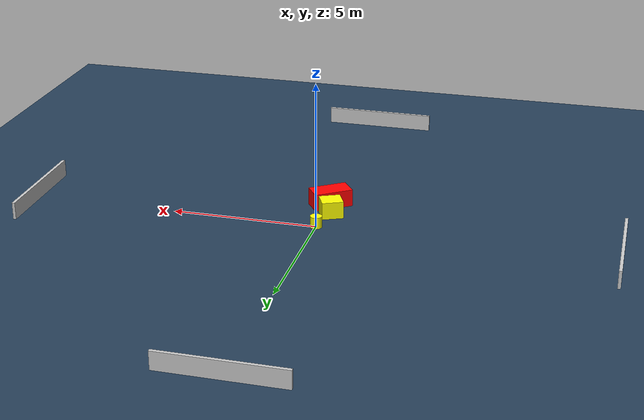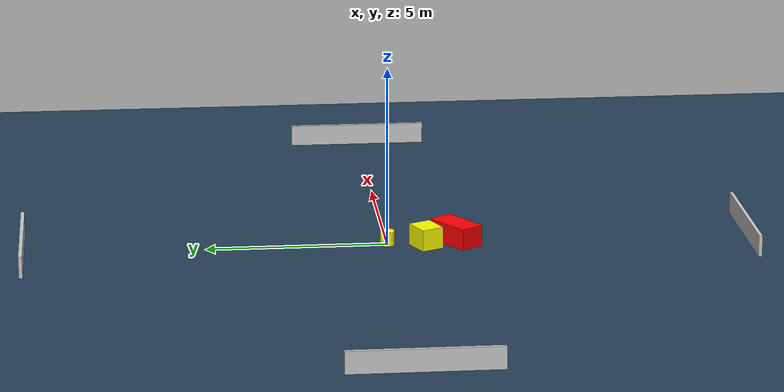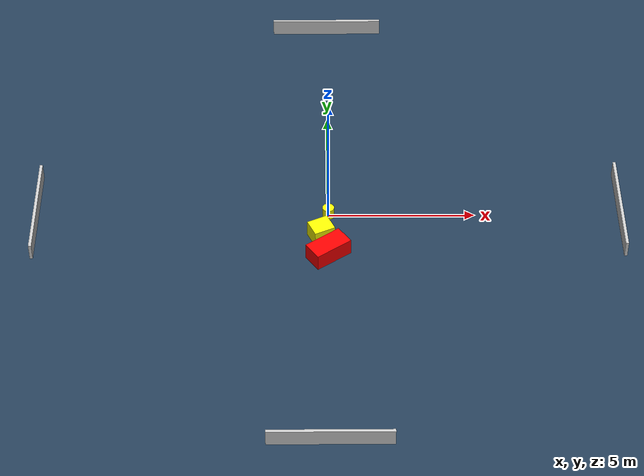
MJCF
<?xml version="1.0" ?>
<mujoco model="generated_environment">
  <option timestep="0.01" integrator="RK4" cone="elliptic"/>
  <default>
    <geom density="1"/>
  </default>
  <asset>
    <texture builtin="gradient" height="3072" name="skybox" rgb1="0.3 0.5 0.7" rgb2="0 0 0" type="skybox" width="512"/>
    <texture builtin="checker" height="300" name="groundplane" rgb1="0.2 0.3 0.4" rgb2="0.1 0.2 0.3" type="2d" width="300"/>
    <material name="groundplane" reflectance="0.2" texrepeat="5 5" texture="groundplane"/>
  </asset>
  <worldbody>
    <light dir="0 0 -1" directional="true" pos="0 0 1.5"/>
    <geom condim="3" friction="0.5 0.005 0.001" material="groundplane" name="floor" pos="0 0 0" size="0 0 0.05" type="plane"/>
    <body name="walls">
      <geom name="wall_1" condim="4" pos="-10.0 0.0 0.3" rgba="0.800000011920929 0.800000011920929 0.800000011920929 1.0" size="0.05 2.0 0.3" type="box"/>
      <geom name="wall_2" condim="4" pos="10.0 0.0 0.3" rgba="0.800000011920929 0.800000011920929 0.800000011920929 1.0" size="0.05 2.0 0.3" type="box"/>
      <geom name="wall_3" condim="4" pos="0.0 -10.0 0.3" rgba="0.800000011920929 0.800000011920929 0.800000011920929 1.0" size="2.0 0.05 0.3" type="box"/>
      <geom name="wall_4" condim="4" pos="0.0 10.0 0.3" rgba="0.800000011920929 0.800000011920929 0.800000011920929 1.0" size="2.0 0.05 0.3" type="box"/>
    </body>
    <body name="robot">
      <joint name="joint_x" type="slide" pos="0 0 0" axis="1 0 0"/>
      <joint name="joint_y" type="slide" pos="0 0 0" axis="0 1 0"/>
      <geom name="robot" type="cylinder" pos="0.0 0.0 0.2" size="0.2 0.2 0.0" mass="5.0" friction="1.0 0.005 0.0001" condim="4" rgba="1.0 1.0 0.0 1.0"/>
    </body>
    <body name="obstacle_1_movable">
      <geom name="obstacle_1_movable" condim="4" pos="-0.2507757544988356 -1.0437183611829146 0.3" euler="0 0 204.9847404974168" friction="0.0 0.005 0.001" rgba="1.0 1.0 0.0 1.0" size="0.3675233039989284 0.32385738643466266 0.3" type="box" mass="0.1"/>
      <joint type="free"/>
    </body>
    <body name="obstacle_2_static">
      <geom name="obstacle_2_static" condim="4" pos="-0.01190559659091244 -1.8997540025285464 0.3" euler="0 0 305.364676492451" friction="0.0 0.005 0.001" rgba="1.0 0.0 0.0 1.0" size="0.35482141803210887 0.6798204462770157 0.3" type="box"/>
    </body>
  </worldbody>
  <actuator>
    <motor name="actuator_x" joint="joint_x" gear="1" ctrlrange="-1 1"/>
    <motor name="actuator_y" joint="joint_y" gear="1" ctrlrange="-1 1"/>
  </actuator>
</mujoco>
